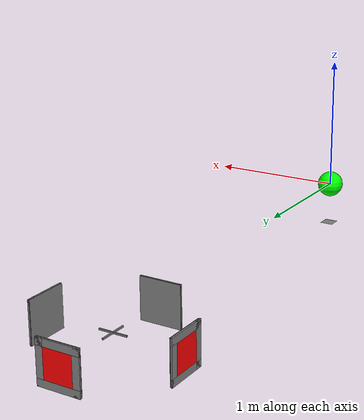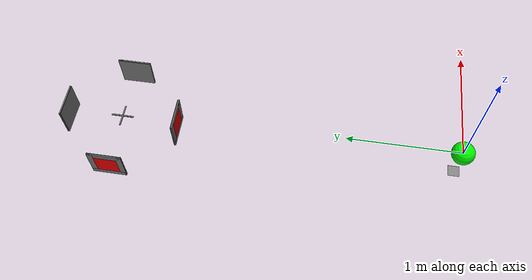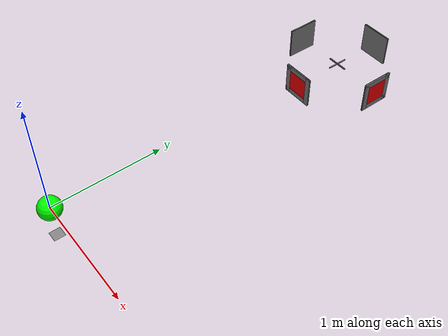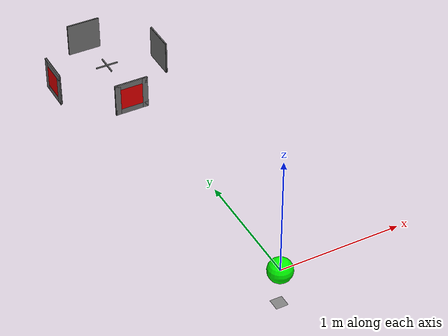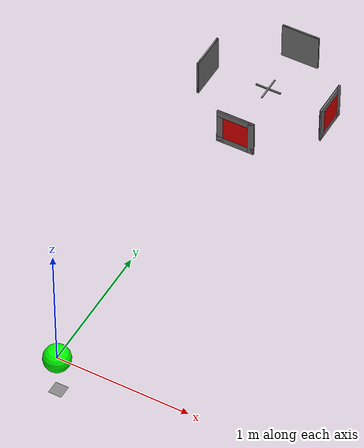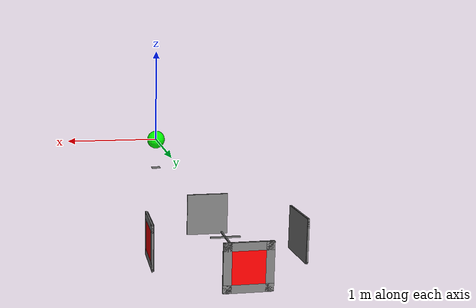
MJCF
<mujoco>

    <compiler coordinate="local" angle="degree" inertiafromgeom="auto"/>

    <option timestep="0.0005" apirate="100" wind="0 0 0" density="1.2" viscosity="0" cone="elliptic">
        <flag sensornoise="enable"/>
    </option>

    <worldbody>

        <light diffuse=".5 .5 .5" pos="0 0 3" dir="0 0 -1"/>
        <geom type="plane" pos="0 0 -0.325" size="0.05 0.05 0.05" contype="2" conaffinity="2"/>

        <body name="camera" pos="0 0 0">
            <camera name="cam1" mode="fixed" euler="90 0 0" pos="0 0 0"/>
        </body>

        <body name="armor" pos="0 3 -0.1" euler="0 0 0">
            <joint name="armor_slidex" type="slide" pos="0 0 0" axis="1 0 0" limited="true" range="-5 5" damping="1.0"/>
            <joint name="armor_slidey" type="slide" pos="0 0 0" axis="0 1 0" limited="true" range="0 5" damping="1.0"/>
            <joint name="armor_slidez" type="slide" pos="0 0 0" axis="0 0 1" limited="true" range="0 5" damping="1.0"/>

            <body name="armor_front" pos="0.5 0 0" euler="0 0 90">
                <site name="armor_front_detect" rgba="1 0 0 1" type="box" size="0.1 0.005 0.1"/>
                <site pos="0 0 0.125" type="box" size="0.15 0.005 0.025"/>
                <site pos="0 0 -0.125" type="box" size="0.15 0.005 0.025"/>
                <site pos="0.125 0 0" type="box" size="0.025 0.005 0.15"/>
                <site pos="-0.125 0 0" type="box" size="0.025 0.005 0.15"/>
                <geom rgba="1 0 0 1" type="box" size="0.1 0.005 0.1" contype="2" conaffinity="2"/>
                <geom pos="0 0.01 0" type="box" size="0.15 0.0005 0.15" contype="2" conaffinity="2"/>
            </body>

            <body name="armor_left" pos="0 0.5 0" euler="0 0 0">
                <site name="armor_left_detect" rgba="0 1 0 1" type="box" size="0.1 0.005 0.1"/>
                <site pos="0 0 0.125" type="box" size="0.15 0.005 0.025"/>
                <site pos="0 0 -0.125" type="box" size="0.15 0.005 0.025"/>
                <site pos="0.125 0 0" type="box" size="0.025 0.005 0.15"/>
                <site pos="-0.125 0 0" type="box" size="0.025 0.005 0.15"/>
                <geom rgba="1 0 0 1" type="box" size="0.1 0.005 0.1" contype="2" conaffinity="2"/>
                <geom pos="0 -0.01 0" type="box" size="0.15 0.0005 0.15" contype="2" conaffinity="2"/>
            </body>

            <body name="armor_right" pos="0 -0.5 0" euler="0 0 0">
                <site name="armor_right_detect" rgba="1 0 0 1" type="box" size="0.1 0.005 0.1"/>
                <site pos="0 0 0.125" type="box" size="0.15 0.005 0.025"/>
                <site pos="0 0 -0.125" type="box" size="0.15 0.005 0.025"/>
                <site pos="0.125 0 0" type="box" size="0.025 0.005 0.15"/>
                <site pos="-0.125 0 0" type="box" size="0.025 0.005 0.15"/>
                <geom rgba="1 0 0 1" type="box" size="0.1 0.005 0.1" contype="2" conaffinity="2"/>
                <geom pos="0 0.01 0" type="box" size="0.15 0.0005 0.15" contype="2" conaffinity="2"/>
            </body>

            <body name="armor_rear" pos="-0.5 0 0" euler="0 0 90">
                <site name="armor_rear_detect" rgba="1 0 0 1" type="box" size="0.1 0.005 0.1"/>
                <site pos="0 0 0.125" type="box" size="0.15 0.005 0.025"/>
                <site pos="0 0 -0.125" type="box" size="0.15 0.005 0.025"/>
                <site pos="0.125 0 0" type="box" size="0.025 0.005 0.15"/>
                <site pos="-0.125 0 0" type="box" size="0.025 0.005 0.15"/>
                <geom rgba="1 0 0 1" type="box" size="0.1 0.005 0.1" contype="2" conaffinity="2"/>
                <geom pos="0 -0.01 0" type="box" size="0.15 0.0005 0.15" contype="2" conaffinity="2"/>
            </body>

            <geom pos="0 0 0" type="box" size="0.1 0.005 0.005" contype="2" conaffinity="2" mass="0.1"/>
            <geom pos="0 0 0" type="box" size="0.005 0.1 0.005" contype="2" conaffinity="2" mass="0.1"/>
            <joint name="armor_rotate" pos="0 0 0" axis="0 0 1" stiffness="0.01" frictionloss="0.01" damping=".06"/>
        </body>

        <body name="obs" pos="0 0 0">
            <geom rgba="0 1 0 1" pos="0 0 0" type="sphere" contype="1" conaffinity="1" size="0.1"/>
            <freejoint name="obsjoint"/>
        </body>

    </worldbody>

    <actuator>
        <velocity joint="armor_rotate" gear="1" forcelimited="true" forcerange="-50 50"/>
        <velocity joint="armor_slidex" gear="1" forcelimited="true" forcerange="-20 20"/>
        <velocity joint="armor_slidey" gear="1" forcelimited="true" forcerange="-20 20"/>
    </actuator>

</mujoco>
